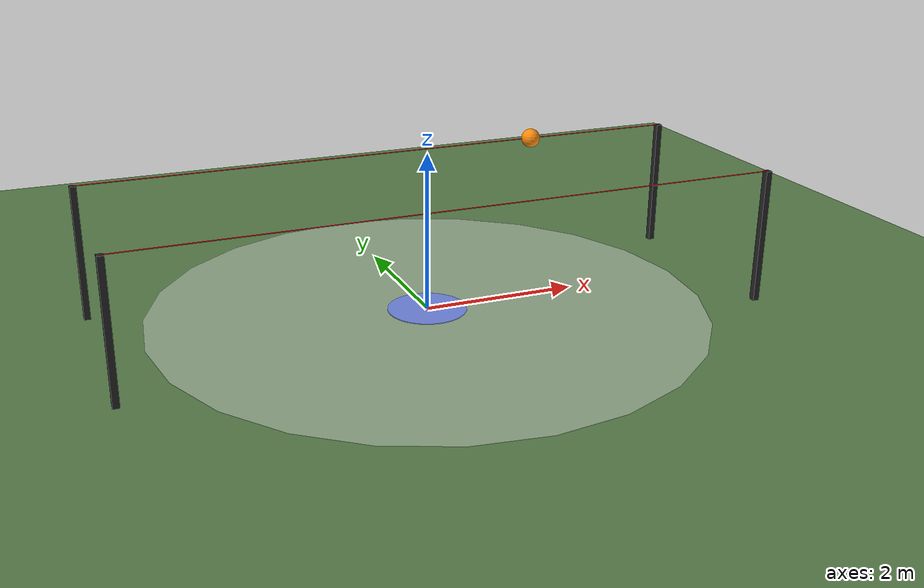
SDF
<sdf version="1.9">
 <world name="sae_hook_arena">
  <physics name="1ms" type="ignore">
   <max_step_size>0.001</max_step_size>
   <real_time_factor>1.0</real_time_factor>
  </physics>
  <plugin filename="gz-sim-physics-system" name="gz::sim::systems::Physics"/>
  <plugin filename="gz-sim-sensors-system" name="gz::sim::systems::Sensors">
   <render_engine>ogre2</render_engine>
  </plugin>
  <plugin filename="gz-sim-user-commands-system" name="gz::sim::systems::UserCommands"/>
  <plugin filename="gz-sim-scene-broadcaster-system" name="gz::sim::systems::SceneBroadcaster"/>
  <plugin filename="gz-sim-imu-system" name="gz::sim::systems::Imu"/>
  <plugin filename="gz-sim-navsat-system" name="gz::sim::systems::NavSat"/>
  <scene><ambient>1.0 1.0 1.0</ambient><background>0.6 0.75 0.9</background></scene>
  <spherical_coordinates>
   <latitude_deg>-35.363262</latitude_deg>
   <longitude_deg>149.165237</longitude_deg>
   <elevation>584</elevation>
   <heading_deg>0</heading_deg>
   <surface_model>EARTH_WGS84</surface_model>
  </spherical_coordinates>
  <light type="directional" name="sun">
   <pose>0 0 10 0 0 0</pose>
   <diffuse>0.8 0.8 0.8 1</diffuse>
   <specular>0.8 0.8 0.8 1</specular>
   <attenuation>
    <range>1000</range>
    <constant>0.9</constant>
    <linear>0.01</linear>
    <quadratic>0.001</quadratic>
   </attenuation>
   <direction>-0.5 0.1 -0.9</direction>
  </light>
  <model name="ground_plane">
   <static>true</static>
   <link name="link">
    <collision name="collision">
     <geometry><plane><normal>0 0 1</normal><size>200 200</size></plane></geometry>
    </collision>
    <visual name="visual">
     <geometry><plane><normal>0 0 1</normal><size>200 200</size></plane></geometry>
     <material><ambient>0.35 0.5 0.3 1</ambient><diffuse>0.35 0.5 0.3 1</diffuse></material>
    </visual>
   </link>
  </model>
  <model name="takeoff_base">
   <static>true</static>
   <pose>0 0 0.005 0 0 0</pose>
   <link name="link">
    <visual name="visual">
     <geometry><cylinder><radius>0.5</radius><length>0.01</length></cylinder></geometry>
     <material><ambient>0.1 0.2 0.8 1</ambient><diffuse>0.15 0.3 0.9 1</diffuse></material>
    </visual>
   </link>
  </model>
  <model name="arena_boundary">
   <static>true</static>
   <pose>0 0 0.01 0 0 0</pose>
   <link name="link">
    <visual name="ring">
     <geometry><cylinder><radius>3.5</radius><length>0.005</length></cylinder></geometry>
     <material><ambient>0.9 0.9 0.9 0.4</ambient><diffuse>0.95 0.95 0.95 0.4</diffuse></material>
    </visual>
   </link>
  </model>
  <model name="hose_a">
   <static>true</static>
   <pose>0 1.25 1.7 0 1.5708 0</pose>
   <link name="link">
    <collision name="collision">
     <geometry><cylinder><radius>0.00635</radius><length>8.0</length></cylinder></geometry>
    </collision>
    <visual name="visual">
     <geometry><cylinder><radius>0.00635</radius><length>8.0</length></cylinder></geometry>
     <material><ambient>0.8 0.1 0.1 1</ambient><diffuse>0.9 0.1 0.1 1</diffuse></material>
    </visual>
   </link>
  </model>
  <model name="hose_a_post_1">
   <static>true</static>
   <pose>-4.0 1.25 0.85 0 0 0</pose>
   <link name="link">
    <collision name="collision"><geometry><box><size>0.08 0.08 1.7</size></box></geometry></collision>
    <visual name="visual">
     <geometry><box><size>0.08 0.08 1.7</size></box></geometry>
     <material><ambient>0.1 0.1 0.1 1</ambient><diffuse>0.15 0.15 0.15 1</diffuse></material>
    </visual>
   </link>
  </model>
  <model name="hose_a_post_2">
   <static>true</static>
   <pose>4.0 1.25 0.85 0 0 0</pose>
   <link name="link">
    <collision name="collision"><geometry><box><size>0.08 0.08 1.7</size></box></geometry></collision>
    <visual name="visual">
     <geometry><box><size>0.08 0.08 1.7</size></box></geometry>
     <material><ambient>0.1 0.1 0.1 1</ambient><diffuse>0.15 0.15 0.15 1</diffuse></material>
    </visual>
   </link>
  </model>
  <model name="sphere_marker">
   <static>true</static>
   <pose>2.0 1.25 1.7 0 0 0</pose>
   <link name="link">
    <collision name="collision"><geometry><sphere><radius>0.125</radius></sphere></geometry></collision>
    <visual name="visual">
     <geometry><sphere><radius>0.125</radius></sphere></geometry>
     <material><ambient>1.0 0.5 0.0 1</ambient><diffuse>1.0 0.55 0.05 1</diffuse></material>
    </visual>
   </link>
  </model>
  <model name="hose_b">
   <static>true</static>
   <pose>0 -1.25 1.7 0 1.5708 0</pose>
   <link name="link">
    <collision name="collision">
     <geometry><cylinder><radius>0.00635</radius><length>8.0</length></cylinder></geometry>
    </collision>
    <visual name="visual">
     <geometry><cylinder><radius>0.00635</radius><length>8.0</length></cylinder></geometry>
     <material><ambient>0.8 0.1 0.1 1</ambient><diffuse>0.9 0.1 0.1 1</diffuse></material>
    </visual>
   </link>
  </model>
  <model name="hose_b_post_1">
   <static>true</static>
   <pose>-4.0 -1.25 0.85 0 0 0</pose>
   <link name="link">
    <collision name="collision"><geometry><box><size>0.08 0.08 1.7</size></box></geometry></collision>
    <visual name="visual">
     <geometry><box><size>0.08 0.08 1.7</size></box></geometry>
     <material><ambient>0.1 0.1 0.1 1</ambient><diffuse>0.15 0.15 0.15 1</diffuse></material>
    </visual>
   </link>
  </model>
  <model name="hose_b_post_2">
   <static>true</static>
   <pose>4.0 -1.25 0.85 0 0 0</pose>
   <link name="link">
    <collision name="collision"><geometry><box><size>0.08 0.08 1.7</size></box></geometry></collision>
    <visual name="visual">
     <geometry><box><size>0.08 0.08 1.7</size></box></geometry>
     <material><ambient>0.1 0.1 0.1 1</ambient><diffuse>0.15 0.15 0.15 1</diffuse></material>
    </visual>
   </link>
  </model>
  <model name="down_camera">
   <static>false</static>
   <pose relative_to="iris::iris_with_standoffs::base_link">0.05 -0.03 -0.04 0 1.5708 0</pose>
   <link name="link">
    <inertial>
     <mass>0.03</mass>
     <inertia><ixx>1e-6</ixx><ixy>0</ixy><ixz>0</ixz><iyy>1e-6</iyy><iyz>0</iyz><izz>1e-6</izz></inertia>
    </inertial>
    <visual name="visual">
     <geometry><box><size>0.02 0.02 0.015</size></box></geometry>
     <material><ambient>0.2 0.2 0.2 1</ambient><diffuse>0.3 0.3 0.3 1</diffuse></material>
    </visual>
    <sensor name="down_rgb" type="camera">
     <always_on>true</always_on>
     <update_rate>30</update_rate>
     <topic>/down_camera</topic>
     <camera>
      <horizontal_fov>1.5009</horizontal_fov>
      <image><width>1920</width><height>1080</height><format>R8G8B8</format></image>
      <clip><near>0.1</near><far>50.0</far></clip>
     </camera>
    </sensor>
   </link>
  </model>
  <joint name="down_camera_joint" type="fixed">
   <parent>iris::iris_with_standoffs::base_link</parent>
   <child>down_camera::link</child>
  </joint>
  <model name="lidar_rangefinder">
   <static>false</static>
   <pose relative_to="iris::iris_with_standoffs::base_link">-0.05 0 -0.05 0 1.5708 0</pose>
   <link name="link">
    <inertial>
     <mass>0.03</mass>
     <inertia><ixx>1e-6</ixx><ixy>0</ixy><ixz>0</ixz><iyy>1e-6</iyy><iyz>0</iyz><izz>1e-6</izz></inertia>
    </inertial>
    <sensor name="lidar_rangefinder" type="gpu_lidar">
     <always_on>true</always_on>
     <update_rate>50</update_rate>
     <topic>/lidar/range</topic>
     <ray>
      <scan>
       <horizontal>
        <samples>1</samples>
        <resolution>1</resolution>
        <min_angle>0</min_angle>
        <max_angle>0</max_angle>
       </horizontal>
      </scan>
      <range><min>0.1</min><max>8.0</max><resolution>0.01</resolution></range>
     </ray>
    </sensor>
   </link>
  </model>
  <joint name="lidar_joint" type="fixed">
   <parent>iris::iris_with_standoffs::base_link</parent>
   <child>lidar_rangefinder::link</child>
  </joint>
  <model name="hook_visual">
   <static>false</static>
   <pose relative_to="iris::iris_with_standoffs::base_link">0.05 0.07 -0.05 0 0 0</pose>
   <link name="link">
    <inertial>
     <mass>0.02</mass>
     <inertia><ixx>1e-6</ixx><ixy>0</ixy><ixz>0</ixz><iyy>1e-6</iyy><iyz>0</iyz><izz>1e-6</izz></inertia>
    </inertial>
    <visual name="visual">
     <geometry><cylinder><radius>0.01</radius><length>0.06</length></cylinder></geometry>
     <material><ambient>0.85 0.1 0.1 1</ambient><diffuse>0.95 0.15 0.15 1</diffuse></material>
    </visual>
   </link>
  </model>
  <joint name="hook_visual_joint" type="fixed">
   <parent>iris::iris_with_standoffs::base_link</parent>
   <child>hook_visual::link</child>
  </joint>
 </world>
</sdf>
